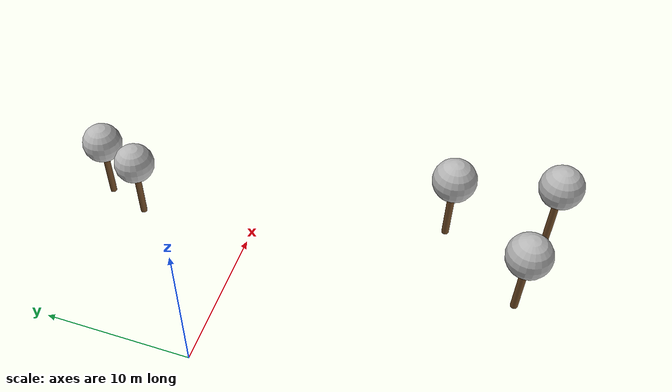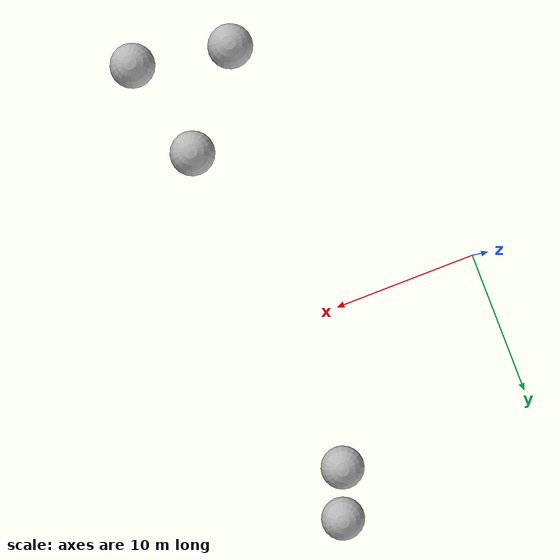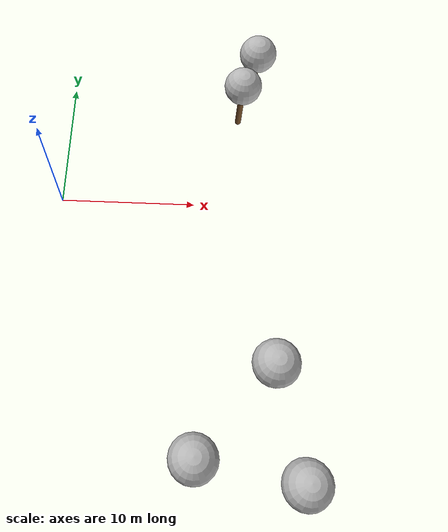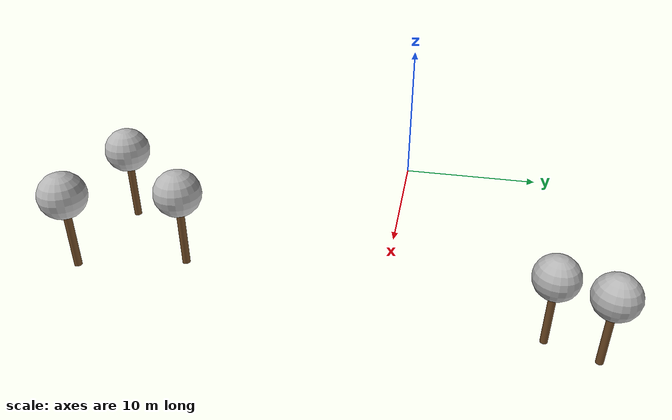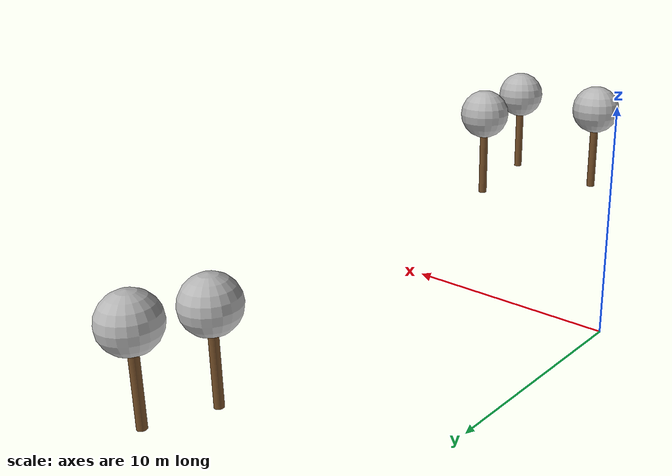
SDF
<sdf version="1.7">
 <world name="default">
  <model name="tree_simple_0_clone_0_clone_clone_4">
   <static>1</static>
   <link name="link">
    <pose>0 0 0.1 0 -0 0</pose>
    <inertial>
     <mass>666</mass>
     <inertia>
      <ixx>0.0861167</ixx>
      <ixy>0</ixy>
      <ixz>0</ixz>
      <iyy>0.0861167</iyy>
      <iyz>0</iyz>
      <izz>0.0861167</izz>
     </inertia>
    </inertial>
    <collision name="collision_trunk">
     <pose>0 0 2 0 -0 0</pose>
     <geometry><cylinder><radius>0.25</radius><length>4</length></cylinder></geometry>
     <surface>
      <contact>
       <poissons_ratio>0.347</poissons_ratio>
       <elastic_modulus>8.8e+09</elastic_modulus>
       <ode><kp>100000</kp><kd>100</kd><max_vel>100</max_vel><min_depth>0.001</min_depth></ode>
      </contact>
      <friction>
       <torsional>
        <coefficient>1</coefficient>
        <use_patch_radius>0</use_patch_radius>
        <surface_radius>0.01</surface_radius>
       </torsional>
      </friction>
     </surface>
    </collision>
    <collision name="collision_treetop">
     <pose>0 0 5.2 0 -0 0</pose>
     <geometry><sphere><radius>1.5</radius></sphere></geometry>
     <surface>
      <contact>
       <poissons_ratio>0.347</poissons_ratio>
       <elastic_modulus>8.8e+09</elastic_modulus>
       <ode><kp>100000</kp><kd>100</kd><max_vel>100</max_vel><min_depth>0.001</min_depth></ode>
      </contact>
      <friction>
       <torsional>
        <coefficient>1</coefficient>
        <use_patch_radius>0</use_patch_radius>
        <surface_radius>0.01</surface_radius>
       </torsional>
      </friction>
     </surface>
    </collision>
    <visual name="trunk">
     <pose>0 0 2 0 -0 0</pose>
     <geometry><cylinder><radius>0.25</radius><length>4</length></cylinder></geometry>
     <material>
      <script>
       <uri>model://tree_simple/scripts</uri>
       <uri>model://tree_simple/materials/textures</uri>
       <name>TreeSimple/Trunk</name>
      </script>
     </material>
    </visual>
    <visual name="treetop">
     <pose>0 0 5.2 0 -0 0</pose>
     <geometry><sphere><radius>1.5</radius></sphere></geometry>
     <material>
      <script>
       <uri>model://tree_simple/scripts</uri>
       <uri>model://tree_simple/materials/textures</uri>
       <name>TreeSimple/Treetop</name>
      </script>
     </material>
    </visual>
   </link>
   <pose>15.2966 -12.9591 0 0 -0 0</pose>
  </model>
  <model name="tree_simple_0_clone_0_clone_clone_5">
   <static>1</static>
   <link name="link">
    <pose>0 0 0.1 0 -0 0</pose>
    <inertial>
     <mass>666</mass>
     <inertia>
      <ixx>0.0861167</ixx>
      <ixy>0</ixy>
      <ixz>0</ixz>
      <iyy>0.0861167</iyy>
      <iyz>0</iyz>
      <izz>0.0861167</izz>
     </inertia>
    </inertial>
    <collision name="collision_trunk">
     <pose>0 0 2 0 -0 0</pose>
     <geometry><cylinder><radius>0.25</radius><length>4</length></cylinder></geometry>
     <surface>
      <contact>
       <poissons_ratio>0.347</poissons_ratio>
       <elastic_modulus>8.8e+09</elastic_modulus>
       <ode><kp>100000</kp><kd>100</kd><max_vel>100</max_vel><min_depth>0.001</min_depth></ode>
      </contact>
      <friction>
       <torsional>
        <coefficient>1</coefficient>
        <use_patch_radius>0</use_patch_radius>
        <surface_radius>0.01</surface_radius>
       </torsional>
      </friction>
     </surface>
    </collision>
    <collision name="collision_treetop">
     <pose>0 0 5.2 0 -0 0</pose>
     <geometry><sphere><radius>1.5</radius></sphere></geometry>
     <surface>
      <contact>
       <poissons_ratio>0.347</poissons_ratio>
       <elastic_modulus>8.8e+09</elastic_modulus>
       <ode><kp>100000</kp><kd>100</kd><max_vel>100</max_vel><min_depth>0.001</min_depth></ode>
      </contact>
      <friction>
       <torsional>
        <coefficient>1</coefficient>
        <use_patch_radius>0</use_patch_radius>
        <surface_radius>0.01</surface_radius>
       </torsional>
      </friction>
     </surface>
    </collision>
    <visual name="trunk">
     <pose>0 0 2 0 -0 0</pose>
     <geometry><cylinder><radius>0.25</radius><length>4</length></cylinder></geometry>
     <material>
      <script>
       <uri>model://tree_simple/scripts</uri>
       <uri>model://tree_simple/materials/textures</uri>
       <name>TreeSimple/Trunk</name>
      </script>
     </material>
    </visual>
    <visual name="treetop">
     <pose>0 0 5.2 0 -0 0</pose>
     <geometry><sphere><radius>1.5</radius></sphere></geometry>
     <material>
      <script>
       <uri>model://tree_simple/scripts</uri>
       <uri>model://tree_simple/materials/textures</uri>
       <name>TreeSimple/Treetop</name>
      </script>
     </material>
    </visual>
   </link>
   <pose>10.4515 -18.6405 0 0 -0 0</pose>
  </model>
  <model name="tree_simple_0_clone_0_clone_clone_6">
   <static>1</static>
   <link name="link">
    <pose>0 0 0.1 0 -0 0</pose>
    <inertial>
     <mass>666</mass>
     <inertia>
      <ixx>0.0861167</ixx>
      <ixy>0</ixy>
      <ixz>0</ixz>
      <iyy>0.0861167</iyy>
      <iyz>0</iyz>
      <izz>0.0861167</izz>
     </inertia>
    </inertial>
    <collision name="collision_trunk">
     <pose>0 0 2 0 -0 0</pose>
     <geometry><cylinder><radius>0.25</radius><length>4</length></cylinder></geometry>
     <surface>
      <contact>
       <poissons_ratio>0.347</poissons_ratio>
       <elastic_modulus>8.8e+09</elastic_modulus>
       <ode><kp>100000</kp><kd>100</kd><max_vel>100</max_vel><min_depth>0.001</min_depth></ode>
      </contact>
      <friction>
       <torsional>
        <coefficient>1</coefficient>
        <use_patch_radius>0</use_patch_radius>
        <surface_radius>0.01</surface_radius>
       </torsional>
      </friction>
     </surface>
    </collision>
    <collision name="collision_treetop">
     <pose>0 0 5.2 0 -0 0</pose>
     <geometry><sphere><radius>1.5</radius></sphere></geometry>
     <surface>
      <contact>
       <poissons_ratio>0.347</poissons_ratio>
       <elastic_modulus>8.8e+09</elastic_modulus>
       <ode><kp>100000</kp><kd>100</kd><max_vel>100</max_vel><min_depth>0.001</min_depth></ode>
      </contact>
      <friction>
       <torsional>
        <coefficient>1</coefficient>
        <use_patch_radius>0</use_patch_radius>
        <surface_radius>0.01</surface_radius>
       </torsional>
      </friction>
     </surface>
    </collision>
    <visual name="trunk">
     <pose>0 0 2 0 -0 0</pose>
     <geometry><cylinder><radius>0.25</radius><length>4</length></cylinder></geometry>
     <material>
      <script>
       <uri>model://tree_simple/scripts</uri>
       <uri>model://tree_simple/materials/textures</uri>
       <name>TreeSimple/Trunk</name>
      </script>
     </material>
    </visual>
    <visual name="treetop">
     <pose>0 0 5.2 0 -0 0</pose>
     <geometry><sphere><radius>1.5</radius></sphere></geometry>
     <material>
      <script>
       <uri>model://tree_simple/scripts</uri>
       <uri>model://tree_simple/materials/textures</uri>
       <name>TreeSimple/Treetop</name>
      </script>
     </material>
    </visual>
   </link>
   <pose>16.9128 -19.7494 0 0 -0 0</pose>
  </model>
  <model name="tree_simple_0_clone_0_clone_clone_1_clone_clone_4">
   <static>1</static>
   <link name="link">
    <pose>0 0 0.1 0 -0 0</pose>
    <inertial>
     <mass>666</mass>
     <inertia>
      <ixx>0.0861167</ixx>
      <ixy>0</ixy>
      <ixz>0</ixz>
      <iyy>0.0861167</iyy>
      <iyz>0</iyz>
      <izz>0.0861167</izz>
     </inertia>
    </inertial>
    <collision name="collision_trunk">
     <pose>0 0 2 0 -0 0</pose>
     <geometry><cylinder><radius>0.25</radius><length>4</length></cylinder></geometry>
     <surface>
      <contact>
       <poissons_ratio>0.347</poissons_ratio>
       <elastic_modulus>8.8e+09</elastic_modulus>
       <ode><kp>100000</kp><kd>100</kd><max_vel>100</max_vel><min_depth>0.001</min_depth></ode>
      </contact>
      <friction>
       <torsional>
        <coefficient>1</coefficient>
        <use_patch_radius>0</use_patch_radius>
        <surface_radius>0.01</surface_radius>
       </torsional>
      </friction>
     </surface>
    </collision>
    <collision name="collision_treetop">
     <pose>0 0 5.2 0 -0 0</pose>
     <geometry><sphere><radius>1.5</radius></sphere></geometry>
     <surface>
      <contact>
       <poissons_ratio>0.347</poissons_ratio>
       <elastic_modulus>8.8e+09</elastic_modulus>
       <ode><kp>100000</kp><kd>100</kd><max_vel>100</max_vel><min_depth>0.001</min_depth></ode>
      </contact>
      <friction>
       <torsional>
        <coefficient>1</coefficient>
        <use_patch_radius>0</use_patch_radius>
        <surface_radius>0.01</surface_radius>
       </torsional>
      </friction>
     </surface>
    </collision>
    <visual name="trunk">
     <pose>0 0 2 0 -0 0</pose>
     <geometry><cylinder><radius>0.25</radius><length>4</length></cylinder></geometry>
     <material>
      <script>
       <uri>model://tree_simple/scripts</uri>
       <uri>model://tree_simple/materials/textures</uri>
       <name>TreeSimple/Trunk</name>
      </script>
     </material>
    </visual>
    <visual name="treetop">
     <pose>0 0 5.2 0 -0 0</pose>
     <geometry><sphere><radius>1.5</radius></sphere></geometry>
     <material>
      <script>
       <uri>model://tree_simple/scripts</uri>
       <uri>model://tree_simple/materials/textures</uri>
       <name>TreeSimple/Treetop</name>
      </script>
     </material>
    </visual>
   </link>
   <pose>14.8506 13.6404 -4.27467 0 -0 0</pose>
  </model>
  <model name="tree_simple_0_clone_0_clone_clone_1_clone_clone_5">
   <static>1</static>
   <link name="link">
    <pose>0 0 0.1 0 -0 0</pose>
    <inertial>
     <mass>666</mass>
     <inertia>
      <ixx>0.0861167</ixx>
      <ixy>0</ixy>
      <ixz>0</ixz>
      <iyy>0.0861167</iyy>
      <iyz>0</iyz>
      <izz>0.0861167</izz>
     </inertia>
    </inertial>
    <collision name="collision_trunk">
     <pose>0 0 2 0 -0 0</pose>
     <geometry><cylinder><radius>0.25</radius><length>4</length></cylinder></geometry>
     <surface>
      <contact>
       <poissons_ratio>0.347</poissons_ratio>
       <elastic_modulus>8.8e+09</elastic_modulus>
       <ode><kp>100000</kp><kd>100</kd><max_vel>100</max_vel><min_depth>0.001</min_depth></ode>
      </contact>
      <friction>
       <torsional>
        <coefficient>1</coefficient>
        <use_patch_radius>0</use_patch_radius>
        <surface_radius>0.01</surface_radius>
       </torsional>
      </friction>
     </surface>
    </collision>
    <collision name="collision_treetop">
     <pose>0 0 5.2 0 -0 0</pose>
     <geometry><sphere><radius>1.5</radius></sphere></geometry>
     <surface>
      <contact>
       <poissons_ratio>0.347</poissons_ratio>
       <elastic_modulus>8.8e+09</elastic_modulus>
       <ode><kp>100000</kp><kd>100</kd><max_vel>100</max_vel><min_depth>0.001</min_depth></ode>
      </contact>
      <friction>
       <torsional>
        <coefficient>1</coefficient>
        <use_patch_radius>0</use_patch_radius>
        <surface_radius>0.01</surface_radius>
       </torsional>
      </friction>
     </surface>
    </collision>
    <visual name="trunk">
     <pose>0 0 2 0 -0 0</pose>
     <geometry><cylinder><radius>0.25</radius><length>4</length></cylinder></geometry>
     <material>
      <script>
       <uri>model://tree_simple/scripts</uri>
       <uri>model://tree_simple/materials/textures</uri>
       <name>TreeSimple/Trunk</name>
      </script>
     </material>
    </visual>
    <visual name="treetop">
     <pose>0 0 5.2 0 -0 0</pose>
     <geometry><sphere><radius>1.5</radius></sphere></geometry>
     <material>
      <script>
       <uri>model://tree_simple/scripts</uri>
       <uri>model://tree_simple/materials/textures</uri>
       <name>TreeSimple/Treetop</name>
      </script>
     </material>
    </visual>
   </link>
   <pose>13.6256 10.3609 -4.27467 0 -0 0</pose>
  </model>
 </world>
</sdf>
